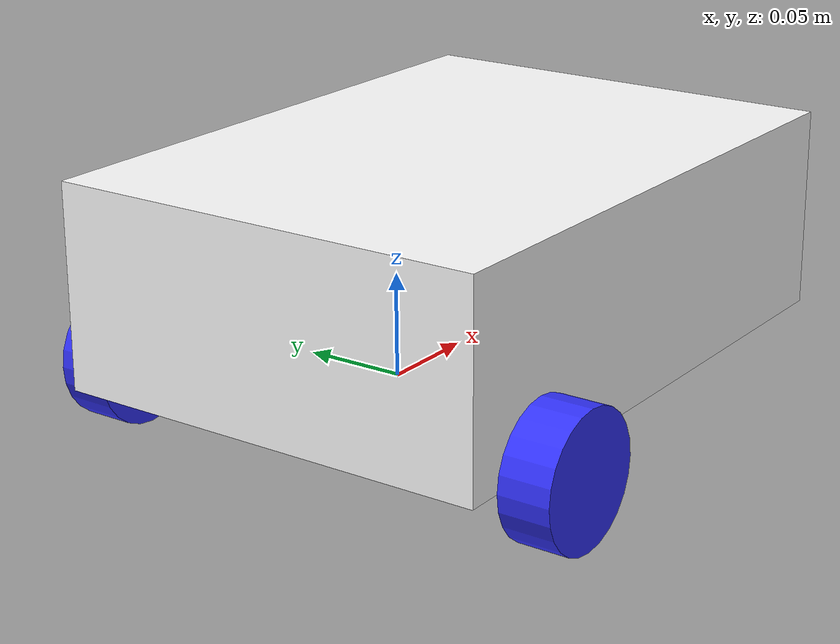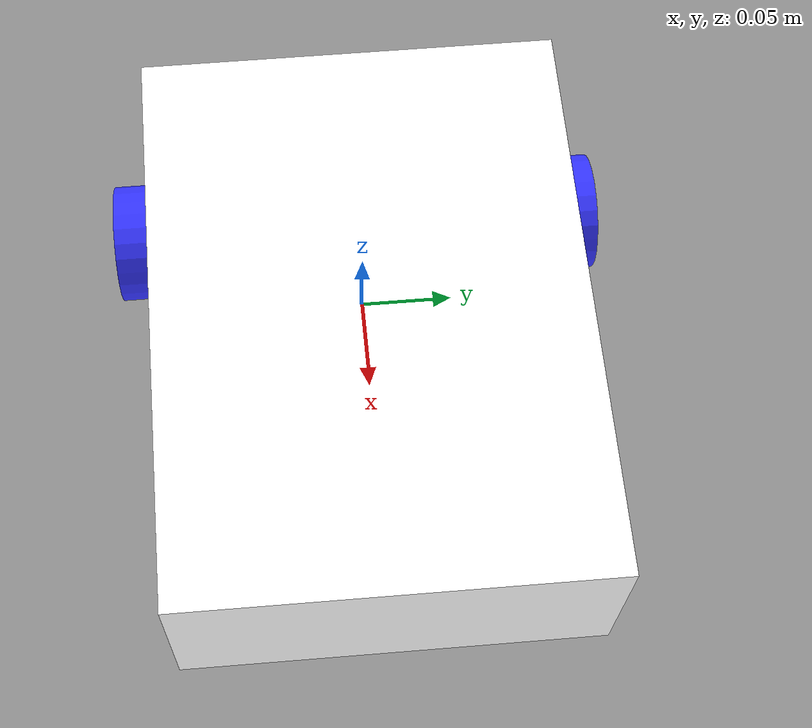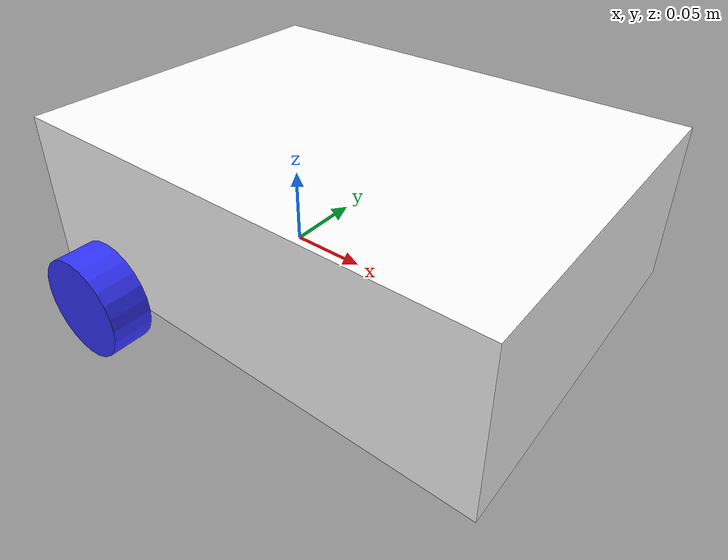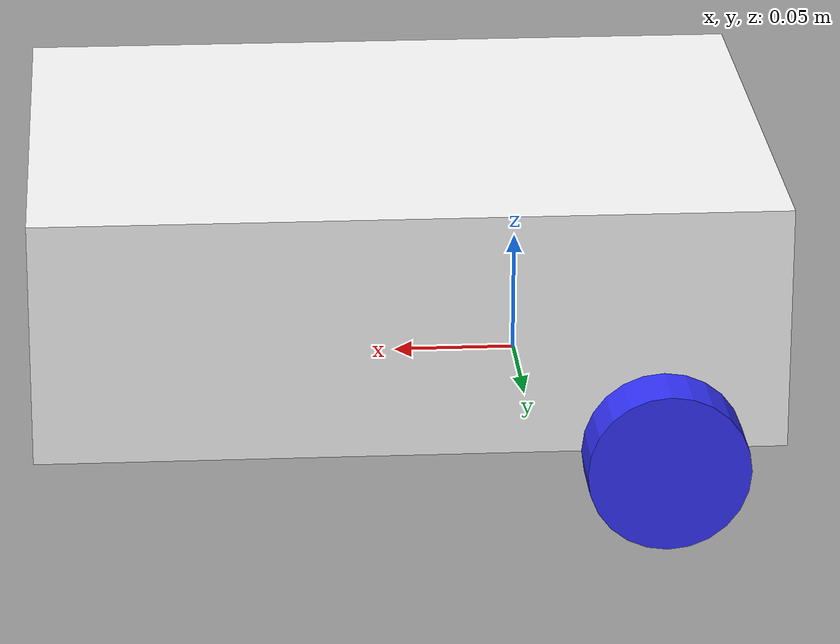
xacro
<?xml version="1.0"?>
<robot xmlns:xacro="http://www.ros.org/wiki/xacro" >

    <xacro:include filename="inertial_macros.xacro"/>

    <material name="white">
        <color rgba="1 1 1 1" />
    </material>

    <material name="orange">
        <color rgba="1 0.3 0.1 1"/>
    </material>

    <material name="blue">
        <color rgba="0.2 0.2 1 1"/>
    </material>

    <material name="black">
        <color rgba="0 0 0 1"/>
    </material>

    <!-- BASE LINK -->

    <link name="base_link">

    </link>

    <!-- BASE FOOTPRINT LINK -->

    <joint name="base_footprint_joint" type="fixed">
        <parent link="base_link"/>
        <child link="base_footprint"/>
        <origin xyz="0 0 0" rpy="0 0 0"/>
    </joint>

    <link name="base_footprint">

    </link>

    <!-- CHASSIS LINK -->

    <joint name="chassis_joint" type="fixed">
        <parent link="base_link"/>
        <child link="chassis"/>
        <origin xyz="-0.1 0 0"/>
    </joint>

    <link name="chassis">
        <visual>
            <origin xyz="0.15 0 0.05"/>
            <geometry>
                <box size="0.3 0.22 0.1"/>
            </geometry>
            <material name="white"/>
        </visual>
        <collision>
            <origin xyz="0.15 0 0.05"/>
            <geometry>
                <box size="0.3 0.22 0.1"/>
            </geometry>
        </collision>
        <xacro:inertial_box mass="0.5" x="0.3" y="0.3" z="0.15">
            <origin xyz="0.15 0 0.05" rpy="0 0 0"/>
        </xacro:inertial_box>
    </link>

    <gazebo reference="chassis">
        <material>Gazebo/White</material>
    </gazebo>

    <!-- LEFT WHEEL LINK -->

    <joint name="left_wheel_joint" type="continuous">
        <parent link="base_link"/>
        <child link="left_wheel"/>
        <origin xyz="-0.05 0.1225 0" rpy="-${pi/2} 0 0" />
        <axis xyz="0 0 1"/>
    </joint>

    <link name="left_wheel">
        <visual>
            <geometry>
                <cylinder radius="0.0325" length="0.025"/>
            </geometry>
            <material name="blue"/>
        </visual>
        <collision>
            <geometry>
                <cylinder radius="0.0325" length="0.025"/>
            </geometry>
        </collision>
        <xacro:inertial_cylinder mass="0.1" length="0.025" radius="0.0325">
            <origin xyz="0 0 0" rpy="0 0 0"/>
        </xacro:inertial_cylinder>
    </link>

    <gazebo reference="left_wheel">
        <material>Gazebo/Blue</material>
    </gazebo>

    <!-- RIGHT WHEEL LINK -->

    <joint name="right_wheel_joint" type="continuous">
        <parent link="base_link"/>
        <child link="right_wheel"/>
        <origin xyz="-0.050 -0.1225 0" rpy="${pi/2} 0 0" />
        <axis xyz="0 0 -1"/>
    </joint>

    <link name="right_wheel">
        <visual>
            <geometry>
                <cylinder radius="0.0325" length="0.025"/>
            </geometry>
            <material name="blue"/>
        </visual>
        <collision>
            <geometry>
                <cylinder radius="0.0325" length="0.025"/>
            </geometry>
        </collision>
        <xacro:inertial_cylinder mass="0.1" length="0.025" radius="0.0325">
            <origin xyz="0 0 0" rpy="0 0 0"/>
        </xacro:inertial_cylinder>
    </link>

    <gazebo reference="right_wheel">
        <material>Gazebo/Blue</material>
    </gazebo>

    <!-- CASTER WHEEL LINK -->

    <joint name="caster_wheel_joint" type="fixed">
        <parent link="chassis"/>
        <child link="caster_wheel"/>
        <origin xyz="0.225 0 0"/>
    </joint>

    <link name="caster_wheel">
        <visual>
            <geometry>
                <sphere radius="0.0325"/>
            </geometry>
            <material name="black"/>
        </visual>
        <collision>
            <geometry>
                <sphere radius="0.0325"/>
            </geometry>
        </collision>
        <xacro:inertial_sphere mass="0.1" radius="0.0325">
            <origin xyz="0 0 0" rpy="0 0 0"/>
        </xacro:inertial_sphere>
    </link>

    <gazebo reference="caster_wheel">
        <material>Gazebo/Black</material>
        <mu1 value="0.1"/>
        <mu2 value="0.1"/>

    </gazebo>

</robot>
